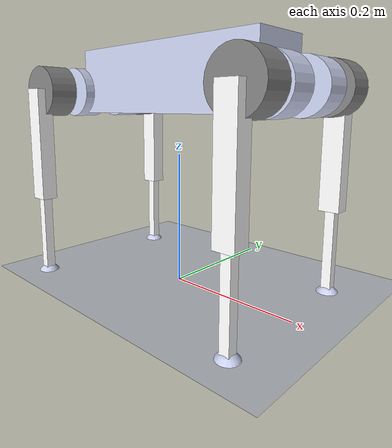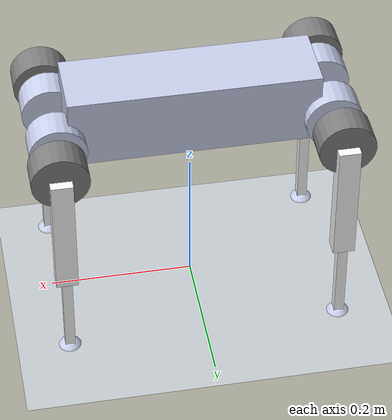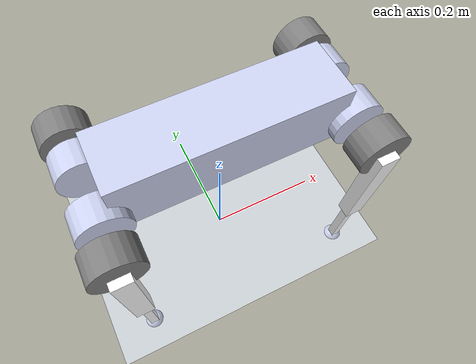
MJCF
<?xml version='1.0' encoding='utf-8'?>
<mujoco model="fanfan_sim2sim">
  <compiler angle="radian" />
  <default>
    <geom friction="0.9 0.005 0.0001" />
  </default>
  <worldbody>
    <geom name="ground" type="plane" size="20 20 0.1" rgba="0.78 0.80 0.82 1" friction="0.9 0.005 0.0001" condim="3" />
    <light name="sun" pos="0 0 3" dir="0 0 -1" directional="true" />
    <body name="Trunk" pos="0.0 0.0 0.295">
      <inertial pos="0 0 0.0120763" quat="0 0.707107 0 0.707107" mass="2.76236" diaginertia="0.0173739 0.0146671 0.00651908" />
      <joint name="floating_base" type="free" limited="false" actuatorfrclimited="false" />
      <geom size="0.17 0.0475 0.05" pos="0 0 0.017" type="box" rgba="0.792157 0.819608 0.933333 1" contype="1" conaffinity="0" />
      <geom size="0.002 0.002 0.001" type="box" rgba="0.792157 0.819608 0.933333 1" contype="1" conaffinity="0" />
      <body name="FR_hip" pos="0.19 -0.0451 0.00075">
        <inertial pos="-0.00439891 0.00308568 0" quat="0.500068 0.500068 0.499932 0.499932" mass="0.402185" diaginertia="0.000305797 0.000212343 0.000212341" />
        <joint name="FR_hip_joint" pos="0 0 0" axis="1 0 0" range="-0.8 0.8" actuatorfrcrange="-17 17" armature="0.01" />
        <geom size="0.039 0.021" pos="-0.0044 0.0031 0" quat="0.707107 0.707107 0 0" type="cylinder" rgba="0.792157 0.819608 0.933333 1" contype="1" conaffinity="0" />
        <geom size="0.039 0.021" pos="0 -0.0545 0" quat="0.707107 0.707107 0 0" type="cylinder" contype="1" conaffinity="0" />
        <body name="FR_thigh" pos="0 -0.076 0">
          <inertial pos="0 0 -0.0845" quat="0.707107 0 0 0.707107" mass="0.599413" diaginertia="0.00150657 0.00147161 0.000124878" />
          <joint name="FR_thigh_joint" pos="0 0 0" axis="0 1 0" range="-0.5 4" actuatorfrcrange="-17 17" armature="0.01" />
          <geom size="0.088 0.012 0.015" pos="0 0 -0.0845" quat="0.707107 0 0.707107 0" type="box" rgba="1 1 1 1" contype="1" conaffinity="0" />
          <body name="FR_calf" pos="0 0.0005 -0.15606">
            <inertial pos="0 -0.000341046 -0.0985067" quat="0.999999 0.00163874 0 0" mass="0.118456" diaginertia="0.000299002 0.000298999 9.24691e-06" />
            <joint name="FR_calf_joint" pos="0 0 0" axis="0 1 0" range="-2.7 -0.85" actuatorfrcrange="-17 17" armature="0.01" />
            <geom size="0.079 0.007 0.007" pos="0 -0.0005 -0.075" quat="0.707107 0 0.707107 0" type="box" rgba="1 1 1 1" contype="1" conaffinity="0" />
            <geom size="0.018" pos="0 0 -0.148942" rgba="0.792157 0.819608 0.933333 1" contype="1" conaffinity="0" />
          </body>
        </body>
      </body>
      <body name="FL_hip" pos="0.19 0.0451 0.00075">
        <inertial pos="-0.00439891 -0.00308568 0" quat="0.499932 0.499932 0.500068 0.500068" mass="0.402185" diaginertia="0.000305797 0.000212343 0.000212341" />
        <joint name="FL_hip_joint" pos="0 0 0" axis="1 0 0" range="-0.8 0.8" actuatorfrcrange="-17 17" armature="0.01" />
        <geom size="0.039 0.021" pos="-0.0044 -0.0031 0" quat="0.707107 0.707107 0 0" type="cylinder" rgba="0.792157 0.819608 0.933333 1" contype="1" conaffinity="0" />
        <geom size="0.039 0.021" pos="0 0.0545 0" quat="0.707107 0.707107 0 0" type="cylinder" contype="1" conaffinity="0" />
        <body name="FL_thigh" pos="0 0.076 0">
          <inertial pos="0 0 -0.0845" quat="0.707107 0 0 0.707107" mass="0.599405" diaginertia="0.00150656 0.00147159 0.000124876" />
          <joint name="FL_thigh_joint" pos="0 0 0" axis="0 1 0" range="-0.5 4" actuatorfrcrange="-17 17" armature="0.01" />
          <geom size="0.088 0.012 0.015" pos="0 0 -0.0845" quat="0.707107 0 0.707107 0" type="box" rgba="1 1 1 1" contype="1" conaffinity="0" />
          <body name="FL_calf" pos="0 -0.0005 -0.15606">
            <inertial pos="0 0.000341046 -0.0985067" quat="0.999999 -0.00163874 0 0" mass="0.118456" diaginertia="0.000299002 0.000298999 9.24691e-06" />
            <joint name="FL_calf_joint" pos="0 0 0" axis="0 1 0" range="-2.7 -0.85" actuatorfrcrange="-17 17" armature="0.01" />
            <geom size="0.079 0.007 0.007" pos="0 0.0005 -0.075" quat="0.707107 0 0.707107 0" type="box" rgba="1 1 1 1" contype="1" conaffinity="0" />
            <geom size="0.018" pos="0 0 -0.148942" rgba="0.792157 0.819608 0.933333 1" contype="1" conaffinity="0" />
          </body>
        </body>
      </body>
      <body name="RR_hip" pos="-0.19 -0.0451 0.00075">
        <inertial pos="0.00439891 0.00308568 0" quat="0.499932 0.499932 0.500068 0.500068" mass="0.402185" diaginertia="0.000305797 0.000212343 0.000212341" />
        <joint name="RR_hip_joint" pos="0 0 0" axis="1 0 0" range="-0.8 0.8" actuatorfrcrange="-17 17" armature="0.01" />
        <geom size="0.039 0.021" pos="0.0044 0.0031 0" quat="0.707107 0.707107 0 0" type="cylinder" rgba="0.792157 0.819608 0.933333 1" contype="1" conaffinity="0" />
        <geom size="0.039 0.021" pos="0 -0.0545 0" quat="0.707107 0.707107 0 0" type="cylinder" contype="1" conaffinity="0" />
        <body name="RR_thigh" pos="0 -0.076 0">
          <inertial pos="0 0 -0.0845" quat="0.707107 0 0 0.707107" mass="0.599413" diaginertia="0.00150657 0.00147161 0.000124878" />
          <joint name="RR_thigh_joint" pos="0 0 0" axis="0 1 0" range="-0.5 4" actuatorfrcrange="-17 17" armature="0.01" />
          <geom size="0.088 0.012 0.015" pos="0 0 -0.0845" quat="0.707107 0 0.707107 0" type="box" rgba="1 1 1 1" contype="1" conaffinity="0" />
          <body name="RR_calf" pos="0 0.0005 -0.15606">
            <inertial pos="0 -0.000341046 -0.0985061" quat="0.999999 0.00163874 0 0" mass="0.118456" diaginertia="0.000298996 0.000298992 9.24691e-06" />
            <joint name="RR_calf_joint" pos="0 0 0" axis="0 1 0" range="-2.7 -0.85" actuatorfrcrange="-17 17" armature="0.01" />
            <geom size="0.079 0.007 0.007" pos="0 -0.0005 -0.075" quat="0.707107 0 0.707107 0" type="box" rgba="1 1 1 1" contype="1" conaffinity="0" />
            <geom size="0.018" pos="0 0 -0.14894" rgba="0.792157 0.819608 0.933333 1" contype="1" conaffinity="0" />
          </body>
        </body>
      </body>
      <body name="RL_hip" pos="-0.19 0.0451 0.00075">
        <inertial pos="0.00439891 -0.00308568 0" quat="0.500068 0.500068 0.499932 0.499932" mass="0.402185" diaginertia="0.000305797 0.000212343 0.000212341" />
        <joint name="RL_hip_joint" pos="0 0 0" axis="1 0 0" range="-0.8 0.8" actuatorfrcrange="-17 17" armature="0.01" />
        <geom size="0.039 0.021" pos="0.0044 -0.0031 0" quat="0.707107 0.707107 0 0" type="cylinder" rgba="0.792157 0.819608 0.933333 1" contype="1" conaffinity="0" />
        <geom size="0.039 0.021" pos="0 0.0545 0" quat="0.707107 0.707107 0 0" type="cylinder" contype="1" conaffinity="0" />
        <body name="RL_thigh" pos="0 0.076 0">
          <inertial pos="0 0 -0.0845" quat="0.707107 0 0 0.707107" mass="0.599405" diaginertia="0.00150656 0.00147159 0.000124876" />
          <joint name="RL_thigh_joint" pos="0 0 0" axis="0 1 0" range="-0.5 4" actuatorfrcrange="-17 17" armature="0.01" />
          <geom size="0.088 0.012 0.015" pos="0 0 -0.0845" quat="0.707107 0 0.707107 0" type="box" rgba="1 1 1 1" contype="1" conaffinity="0" />
          <body name="RL_calf" pos="0 -0.0005 -0.15606">
            <inertial pos="0 0.000341046 -0.0985061" quat="0.999999 -0.00163874 0 0" mass="0.118456" diaginertia="0.000298996 0.000298992 9.24691e-06" />
            <joint name="RL_calf_joint" pos="0 0 0" axis="0 1 0" range="-2.7 -0.85" actuatorfrcrange="-17 17" armature="0.01" />
            <geom size="0.079 0.007 0.007" pos="0 0.0005 -0.075" quat="0.707107 0 0.707107 0" type="box" rgba="1 1 1 1" contype="1" conaffinity="0" />
            <geom size="0.018" pos="0 0 -0.14894" rgba="0.792157 0.819608 0.933333 1" contype="1" conaffinity="0" />
          </body>
        </body>
      </body>
    </body>
  </worldbody>
  <option timestep="0.005" gravity="0 0 -9.81" integrator="implicitfast" />
  <actuator>
    <motor name="FR_hip_joint_motor" joint="FR_hip_joint" gear="1" ctrllimited="true" ctrlrange="-17 17" />
    <motor name="FR_thigh_joint_motor" joint="FR_thigh_joint" gear="1" ctrllimited="true" ctrlrange="-17 17" />
    <motor name="FR_calf_joint_motor" joint="FR_calf_joint" gear="1" ctrllimited="true" ctrlrange="-17 17" />
    <motor name="FL_hip_joint_motor" joint="FL_hip_joint" gear="1" ctrllimited="true" ctrlrange="-17 17" />
    <motor name="FL_thigh_joint_motor" joint="FL_thigh_joint" gear="1" ctrllimited="true" ctrlrange="-17 17" />
    <motor name="FL_calf_joint_motor" joint="FL_calf_joint" gear="1" ctrllimited="true" ctrlrange="-17 17" />
    <motor name="RR_hip_joint_motor" joint="RR_hip_joint" gear="1" ctrllimited="true" ctrlrange="-17 17" />
    <motor name="RR_thigh_joint_motor" joint="RR_thigh_joint" gear="1" ctrllimited="true" ctrlrange="-17 17" />
    <motor name="RR_calf_joint_motor" joint="RR_calf_joint" gear="1" ctrllimited="true" ctrlrange="-17 17" />
    <motor name="RL_hip_joint_motor" joint="RL_hip_joint" gear="1" ctrllimited="true" ctrlrange="-17 17" />
    <motor name="RL_thigh_joint_motor" joint="RL_thigh_joint" gear="1" ctrllimited="true" ctrlrange="-17 17" />
    <motor name="RL_calf_joint_motor" joint="RL_calf_joint" gear="1" ctrllimited="true" ctrlrange="-17 17" />
  </actuator>
</mujoco>
